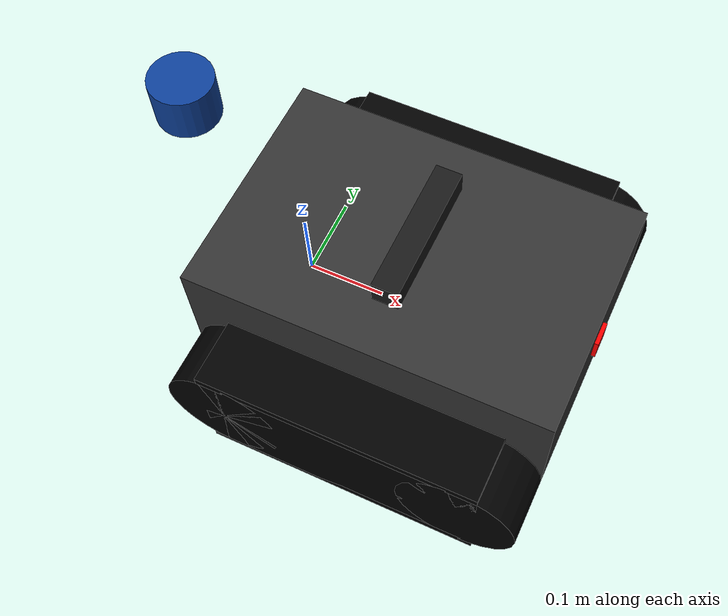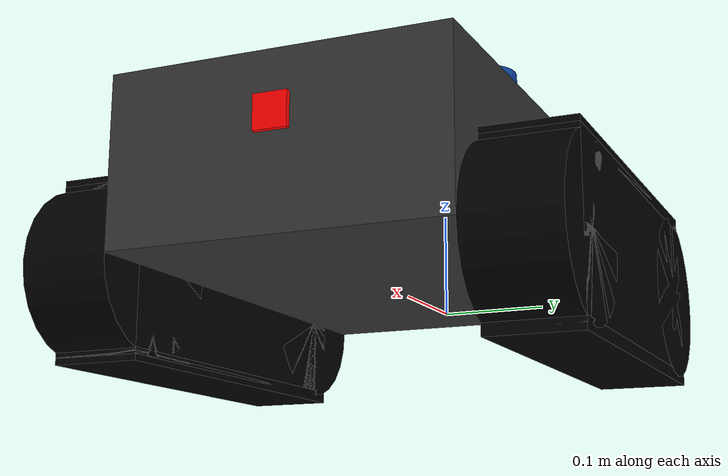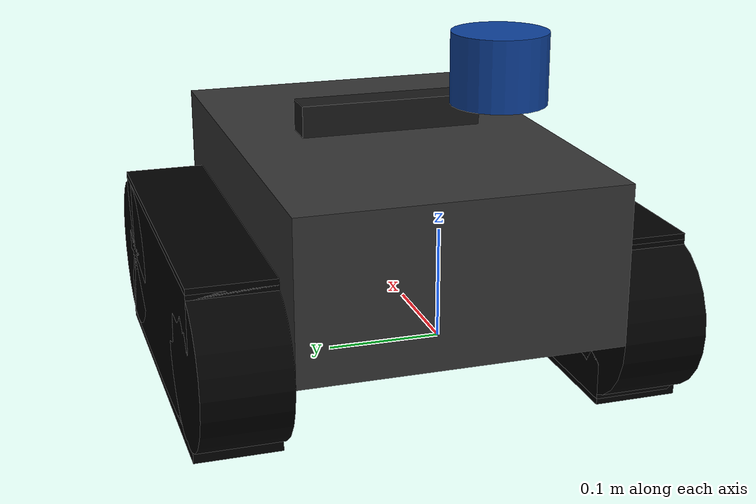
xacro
<?xml version="1.0"?>
<robot xmlns:xacro="http://www.ros.org/wiki/xacro" name="kahuil_tracked">

    <xacro:arg name="use_ros2_control" default="true"/>
    <xacro:arg name="sim_mode" default="false"/>

    <xacro:include filename="kahuil_tracked_core.xacro" />

    <xacro:if value="$(arg use_ros2_control)">
        <xacro:include filename="kahuil_tracked_ros2_control.xacro"/>
    </xacro:if>

    <xacro:unless value="$(arg use_ros2_control)">
        <xacro:include filename="kahuil_tracked_gazebo.xacro"/>
    </xacro:unless>

    <xacro:include filename="lidar.xacro"/>

    <xacro:include filename="depth_camera.xacro"/>

    <xacro:include filename="zed.xacro"/>

</robot>

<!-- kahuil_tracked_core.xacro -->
<robot xmlns:xacro="http://www.ros.org/wiki/xacro">

    <xacro:include filename="inertial_macros.xacro"/>

    <!-- ==================== DIMENSIONS ==================== -->
    <!-- Adjust these properties to match the real robot       -->

    <!-- Chassis (main body box) -->
    <xacro:property name="chassis_length" value="0.45"/>
    <xacro:property name="chassis_width" value="0.30"/>
    <xacro:property name="chassis_height" value="0.15"/>
    <xacro:property name="chassis_mass" value="12.0"/>

    <!-- Track / wheel properties -->
    <xacro:property name="wheel_radius" value="0.075"/>
    <xacro:property name="track_width" value="0.08"/>
    <xacro:property name="track_length" value="0.35"/>
    <xacro:property name="wheel_mass" value="1.5"/>

    <!-- Wheel placement -->
    <xacro:property name="wheel_offset_x" value="${chassis_length/2 - wheel_radius}"/>
    <xacro:property name="wheel_offset_y" value="${chassis_width/2 + track_width/2}"/>
    <xacro:property name="wheel_offset_z" value="0.0"/>

    <!-- Ground clearance offset (chassis bottom above ground) -->
    <xacro:property name="ground_clearance" value="0.0"/>

    <!-- ==================== MATERIALS ==================== -->

    <material name="white">
        <color rgba="1 1 1 1"/>
    </material>

    <material name="dark_grey">
        <color rgba="0.2 0.2 0.2 1"/>
    </material>

    <material name="blue">
        <color rgba="0.2 0.2 1 1"/>
    </material>

    <material name="black">
        <color rgba="0 0 0 1"/>
    </material>

    <material name="red">
        <color rgba="1 0 0 1"/>
    </material>

    <!-- ==================== BASE LINK ==================== -->

    <link name="base_link">
    </link>

    <!-- ==================== BASE FOOTPRINT ==================== -->

    <joint name="base_footprint_joint" type="fixed">
        <parent link="base_link"/>
        <child link="base_footprint"/>
        <origin xyz="0 0 0" rpy="0 0 0"/>
    </joint>

    <link name="base_footprint">
    </link>

    <!-- ==================== CHASSIS ==================== -->
    <!-- Chassis is offset so base_link sits at the center of the wheel axis -->

    <joint name="chassis_joint" type="fixed">
        <parent link="base_link"/>
        <child link="chassis"/>
        <origin xyz="${-chassis_length/2 + wheel_offset_x} 0 ${ground_clearance}"/>
    </joint>

    <link name="chassis">
        <!-- Main body box -->
        <visual>
            <origin xyz="${chassis_length/2} 0 ${chassis_height/2}" rpy="0 0 0"/>
            <geometry>
                <box size="${chassis_length} ${chassis_width} ${chassis_height}"/>
            </geometry>
            <material name="dark_grey"/>
        </visual>
        <collision>
            <origin xyz="${chassis_length/2} 0 ${chassis_height/2}" rpy="0 0 0"/>
            <geometry>
                <box size="${chassis_length} ${chassis_width} ${chassis_height}"/>
            </geometry>
        </collision>
        <xacro:inertial_box mass="${chassis_mass}" x="${chassis_length}" y="${chassis_width}" z="${chassis_height}">
            <origin xyz="${chassis_length/2} 0 ${chassis_height/2}" rpy="0 0 0"/>
        </xacro:inertial_box>
    </link>

    <gazebo reference="chassis">
        <material>Gazebo/DarkGrey</material>
    </gazebo>

    <!-- ==================== TRACK VISUAL MACRO ==================== -->
    <!-- Each track is visualized as: front sprocket + rear sprocket + connecting box -->

    <xacro:macro name="track_visual" params="prefix y_offset">
        <joint name="${prefix}_track_joint" type="fixed">
            <parent link="chassis"/>
            <child link="${prefix}_track"/>
            <origin xyz="0 ${y_offset} ${-ground_clearance - wheel_radius}" rpy="0 0 0"/>
        </joint>

        <link name="${prefix}_track">
            <!-- Front sprocket -->
            <visual>
                <origin xyz="${chassis_length - wheel_radius} 0 ${wheel_radius}" rpy="${pi/2} 0 0"/>
                <geometry>
                    <cylinder radius="${wheel_radius}" length="${track_width}"/>
                </geometry>
                <material name="black"/>
            </visual>
            <!-- Rear sprocket -->
            <visual>
                <origin xyz="${wheel_radius} 0 ${wheel_radius}" rpy="${pi/2} 0 0"/>
                <geometry>
                    <cylinder radius="${wheel_radius}" length="${track_width}"/>
                </geometry>
                <material name="black"/>
            </visual>
            <!-- Top track run -->
            <visual>
                <origin xyz="${chassis_length/2} 0 ${wheel_radius*2}" rpy="0 0 0"/>
                <geometry>
                    <box size="${track_length} ${track_width} ${wheel_radius*0.15}"/>
                </geometry>
                <material name="black"/>
            </visual>
            <!-- Bottom track run -->
            <visual>
                <origin xyz="${chassis_length/2} 0 0" rpy="0 0 0"/>
                <geometry>
                    <box size="${track_length} ${track_width} ${wheel_radius*0.15}"/>
                </geometry>
                <material name="black"/>
            </visual>
            <!-- Side plate (track body fill) -->
            <visual>
                <origin xyz="${chassis_length/2} 0 ${wheel_radius}" rpy="0 0 0"/>
                <geometry>
                    <box size="${track_length} ${track_width} ${wheel_radius*2}"/>
                </geometry>
                <material name="black"/>
            </visual>
        </link>

        <gazebo reference="${prefix}_track">
            <material>Gazebo/Black</material>
        </gazebo>
    </xacro:macro>

    <!-- Instantiate left and right track visuals -->
    <xacro:track_visual prefix="left" y_offset="${wheel_offset_y}"/>
    <xacro:track_visual prefix="right" y_offset="${-wheel_offset_y}"/>

    <!-- ==================== DRIVE WHEEL MACRO ==================== -->

    <xacro:macro name="drive_wheel" params="prefix y_sign">
        <joint name="${prefix}_wheel_joint" type="continuous">
            <parent link="base_link"/>
            <child link="${prefix}_wheel"/>
            <origin xyz="0 ${y_sign * wheel_offset_y} 0" rpy="${-y_sign * pi/2} 0 0"/>
            <axis xyz="0 0 ${y_sign}"/>
        </joint>

        <link name="${prefix}_wheel">
            <collision>
                <geometry>
                    <sphere radius="${wheel_radius}"/>
                </geometry>
            </collision>
            <xacro:inertial_cylinder mass="${wheel_mass}" length="${track_width}" radius="${wheel_radius}">
                <origin xyz="0 0 0" rpy="0 0 0"/>
            </xacro:inertial_cylinder>
        </link>

        <gazebo reference="${prefix}_wheel">
            <mu1 value="1.5"/>
            <mu2 value="1.5"/>
            <kp>1000000.0</kp>
            <kd>100.0</kd>
        </gazebo>
    </xacro:macro>

    <xacro:drive_wheel prefix="left" y_sign="1"/>
    <xacro:drive_wheel prefix="right" y_sign="-1"/>

    <!-- ==================== FRONT IDLER WHEELS (support at front of tracks) ==================== -->
    <!-- Same radius as drive wheels so they touch ground. Low friction for skid-steering. -->

    <xacro:property name="idler_mass" value="0.1"/>
    <xacro:property name="front_idler_x" value="${chassis_length - wheel_radius - (chassis_length/2 - wheel_offset_x)}"/>

    <xacro:macro name="idler_wheel" params="prefix side x_pos y_pos">
        <joint name="${prefix}_${side}_idler_joint" type="continuous">
            <parent link="base_link"/>
            <child link="${prefix}_${side}_idler"/>
            <origin xyz="${x_pos} ${y_pos} 0" rpy="${-pi/2} 0 0"/>
            <axis xyz="0 0 1"/>
        </joint>

        <link name="${prefix}_${side}_idler">
            <collision>
                <geometry>
                    <sphere radius="${wheel_radius}"/>
                </geometry>
            </collision>
            <xacro:inertial_sphere mass="${idler_mass}" radius="${wheel_radius}">
                <origin xyz="0 0 0" rpy="0 0 0"/>
            </xacro:inertial_sphere>
        </link>

        <gazebo reference="${prefix}_${side}_idler">
            <mu1 value="0.01"/>
            <mu2 value="0.01"/>
            <kp>1000000.0</kp>
            <kd>100.0</kd>
        </gazebo>
    </xacro:macro>

    <xacro:idler_wheel prefix="front" side="left"  x_pos="${front_idler_x}" y_pos="${wheel_offset_y}"/>
    <xacro:idler_wheel prefix="front" side="right" x_pos="${front_idler_x}" y_pos="${-wheel_offset_y}"/>

</robot>

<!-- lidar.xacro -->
<robot xmlns:xacro="http://www.ros.org/wiki/xacro">

  <xacro:property name="lidar_x"      value="-0.13"/>
  <xacro:property name="lidar_y"      value="0.0"/>
  <xacro:property name="lidar_z"      value="0.30"/>   <!-- scan plane height -->
  <xacro:property name="lidar_radius" value="0.0375"/> <!-- 7.5 cm diameter puck -->
  <xacro:property name="lidar_height" value="0.055"/>
  <xacro:property name="lidar_mass"   value="0.19"/>

  <material name="lidar_blue"><color rgba="0.05 0.25 0.6 1"/></material>

  <joint name="lidar_joint" type="fixed">
    <parent link="base_link"/>
    <child  link="lidar_link"/>
    <origin xyz="${lidar_x} ${lidar_y} ${lidar_z}" rpy="0 0 0"/>
  </joint>

  <link name="lidar_link">
    <visual>
      <origin xyz="0 0 ${-lidar_height/2}" rpy="0 0 0"/>
      <geometry>
        <cylinder radius="${lidar_radius}" length="${lidar_height}"/>
      </geometry>
      <material name="lidar_blue"/>
    </visual>
    <collision>
      <origin xyz="0 0 ${-lidar_height/2}" rpy="0 0 0"/>
      <geometry>
        <cylinder radius="${lidar_radius}" length="${lidar_height}"/>
      </geometry>
    </collision>
    <xacro:inertial_cylinder mass="${lidar_mass}"
                             length="${lidar_height}" radius="${lidar_radius}">
      <origin xyz="0 0 ${-lidar_height/2}" rpy="0 0 0"/>
    </xacro:inertial_cylinder>
  </link>

</robot>

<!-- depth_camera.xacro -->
<robot xmlns:xacro="http://www.ros.org/wiki/xacro" >

    <joint name="camera_joint" type="fixed">
        <parent link="chassis"/>
        <child link="camera_link"/>
        <origin xyz="${chassis_length} 0 ${chassis_height * 0.65}" rpy="0 0 0"/>
    </joint>

    <link name="camera_link">
        <visual>
            <geometry>
                <box size="0.010 0.03 0.03"/>
            </geometry>
            <material name="red"/>
        </visual>
    </link>

    <joint name="camera_optical_joint" type="fixed">
        <parent link="camera_link"/>
        <child link="camera_link_optical"/>
        <origin xyz="0 0 0" rpy="${-pi/2} 0 ${-pi/2}"/>
    </joint>

    <link name="camera_link_optical"></link>

    <gazebo reference="camera_link">
        <material>Gazebo/Red</material>

        <sensor name="rgbd_camera" type="rgbd_camera">
            <pose>0 0 0 0 0 0</pose>
            <visualize>true</visualize>
            <update_rate>5</update_rate>
            <camera>
                <camera_info_topic>camera/camera_info</camera_info_topic>
                <horizontal_fov>1.089</horizontal_fov>
                <image>
                    <format>R8G8B8</format>
                    <width>320</width>
                    <height>240</height>
                </image>
                <clip>
                    <near>0.1</near>
                    <far>8.0</far>
                </clip>
                <depth_camera>
                    <clip>
                        <near>0.1</near>
                        <far>8.0</far>
                    </clip>
                </depth_camera>
            </camera>
            <topic>camera</topic>
            <gz_frame_id>camera_link_optical</gz_frame_id>
        </sensor>
    </gazebo>

</robot>

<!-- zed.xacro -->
<robot xmlns:xacro="http://www.ros.org/wiki/xacro">

    <!-- ZED 2i mount position (relative to base_link, which is at wheel-axle height) -->
    <xacro:property name="zed_x" value="0.15"/>
    <xacro:property name="zed_y" value="0.0"/>
    <xacro:property name="zed_z" value="0.17"/>

    <joint name="zed_joint" type="fixed">
        <parent link="base_link"/>
        <child link="zed_camera_link"/>
        <origin xyz="${zed_x} ${zed_y} ${zed_z}" rpy="0 0 0"/>
    </joint>

    <link name="zed_camera_link">
        <visual>
            <geometry>
                <box size="0.033 0.175 0.030"/>
            </geometry>
            <material name="zed_black">
                <color rgba="0.1 0.1 0.1 1"/>
            </material>
        </visual>
    </link>

</robot>
